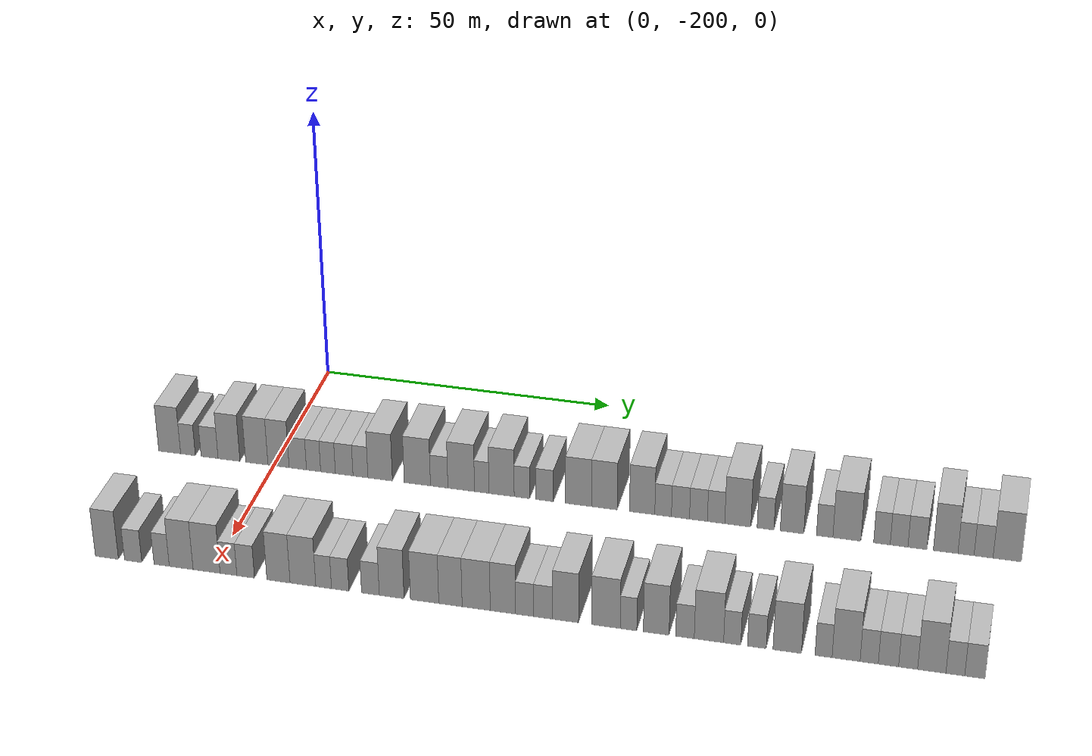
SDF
<sdf version="1.6">
 <world name="default">
  <model name="building_1">
   <static>1</static>
   <pose>25.0000 -218.0897 0 0.000000 0.000000 0.000000</pose>
   <link name="link">
    <pose>0 0 4.50 0 0 0</pose>
    <collision name="collision"><geometry><box><size>10.0000 3.8207 9.0000</size></box></geometry></collision>
    <visual name="visual">
     <cast_shadows>0</cast_shadows>
     <geometry><box><size>10.0000 3.8207 9.0000</size></box></geometry>
     <material>
      <script>
       <uri>model://HANNAS_wall/materials/scripts</uri>
       <uri>model://HANNAS_wall/materials/textures</uri>
       <name>vrc/HANNAS_wall</name>
      </script>
     </material>
    </visual>
   </link>
  </model>
  <model name="building_2">
   <static>1</static>
   <pose>25.0000 -214.8921 0 0.000000 0.000000 0.000000</pose>
   <link name="link">
    <pose>0 0 3.00 0 0 0</pose>
    <collision name="collision"><geometry><box><size>10.0000 2.5745 6.0000</size></box></geometry></collision>
    <visual name="visual">
     <cast_shadows>0</cast_shadows>
     <geometry><box><size>10.0000 2.5745 6.0000</size></box></geometry>
     <material>
      <script>
       <uri>model://HANNAS_wall/materials/scripts</uri>
       <uri>model://HANNAS_wall/materials/textures</uri>
       <name>vrc/HANNAS_wall</name>
      </script>
     </material>
    </visual>
   </link>
  </model>
  <model name="building_3">
   <static>1</static>
   <pose>25.0000 -211.1258 0 0.000000 0.000000 0.000000</pose>
   <link name="link">
    <pose>0 0 3.00 0 0 0</pose>
    <collision name="collision"><geometry><box><size>10.0000 2.9583 6.0000</size></box></geometry></collision>
    <visual name="visual">
     <cast_shadows>0</cast_shadows>
     <geometry><box><size>10.0000 2.9583 6.0000</size></box></geometry>
     <material>
      <script>
       <uri>model://HANNAS_wall/materials/scripts</uri>
       <uri>model://HANNAS_wall/materials/textures</uri>
       <name>vrc/HANNAS_wall</name>
      </script>
     </material>
    </visual>
   </link>
  </model>
  <model name="building_4">
   <static>1</static>
   <pose>25.0000 -207.7476 0 0.000000 0.000000 0.000000</pose>
   <link name="link">
    <pose>0 0 4.50 0 0 0</pose>
    <collision name="collision"><geometry><box><size>10.0000 3.7980 9.0000</size></box></geometry></collision>
    <visual name="visual">
     <cast_shadows>0</cast_shadows>
     <geometry><box><size>10.0000 3.7980 9.0000</size></box></geometry>
     <material>
      <script>
       <uri>model://HANNAS_wall/materials/scripts</uri>
       <uri>model://HANNAS_wall/materials/textures</uri>
       <name>vrc/HANNAS_wall</name>
      </script>
     </material>
    </visual>
   </link>
  </model>
  <model name="building_5">
   <static>1</static>
   <pose>25.0000 -202.9274 0 0.000000 0.000000 0.000000</pose>
   <link name="link">
    <pose>0 0 4.50 0 0 0</pose>
    <collision name="collision"><geometry><box><size>10.0000 3.8425 9.0000</size></box></geometry></collision>
    <visual name="visual">
     <cast_shadows>0</cast_shadows>
     <geometry><box><size>10.0000 3.8425 9.0000</size></box></geometry>
     <material>
      <script>
       <uri>model://HANNAS_wall/materials/scripts</uri>
       <uri>model://HANNAS_wall/materials/textures</uri>
       <name>vrc/HANNAS_wall</name>
      </script>
     </material>
    </visual>
   </link>
  </model>
  <model name="building_6">
   <static>1</static>
   <pose>25.0000 -199.1834 0 0.000000 0.000000 0.000000</pose>
   <link name="link">
    <pose>0 0 4.50 0 0 0</pose>
    <collision name="collision"><geometry><box><size>10.0000 3.6454 9.0000</size></box></geometry></collision>
    <visual name="visual">
     <cast_shadows>0</cast_shadows>
     <geometry><box><size>10.0000 3.6454 9.0000</size></box></geometry>
     <material>
      <script>
       <uri>model://HANNAS_wall/materials/scripts</uri>
       <uri>model://HANNAS_wall/materials/textures</uri>
       <name>vrc/HANNAS_wall</name>
      </script>
     </material>
    </visual>
   </link>
  </model>
  <model name="building_7">
   <static>1</static>
   <pose>25.0000 -195.8745 0 0.000000 0.000000 0.000000</pose>
   <link name="link">
    <pose>0 0 3.00 0 0 0</pose>
    <collision name="collision"><geometry><box><size>10.0000 2.9724 6.0000</size></box></geometry></collision>
    <visual name="visual">
     <cast_shadows>0</cast_shadows>
     <geometry><box><size>10.0000 2.9724 6.0000</size></box></geometry>
     <material>
      <script>
       <uri>model://HANNAS_wall/materials/scripts</uri>
       <uri>model://HANNAS_wall/materials/textures</uri>
       <name>vrc/HANNAS_wall</name>
      </script>
     </material>
    </visual>
   </link>
  </model>
  <model name="building_8">
   <static>1</static>
   <pose>25.0000 -193.1741 0 0.000000 0.000000 0.000000</pose>
   <link name="link">
    <pose>0 0 3.00 0 0 0</pose>
    <collision name="collision"><geometry><box><size>10.0000 2.4283 6.0000</size></box></geometry></collision>
    <visual name="visual">
     <cast_shadows>0</cast_shadows>
     <geometry><box><size>10.0000 2.4283 6.0000</size></box></geometry>
     <material>
      <script>
       <uri>model://HANNAS_wall/materials/scripts</uri>
       <uri>model://HANNAS_wall/materials/textures</uri>
       <name>vrc/HANNAS_wall</name>
      </script>
     </material>
    </visual>
   </link>
  </model>
  <model name="building_9">
   <static>1</static>
   <pose>25.0000 -190.6987 0 0.000000 0.000000 0.000000</pose>
   <link name="link">
    <pose>0 0 3.00 0 0 0</pose>
    <collision name="collision"><geometry><box><size>10.0000 2.5225 6.0000</size></box></geometry></collision>
    <visual name="visual">
     <cast_shadows>0</cast_shadows>
     <geometry><box><size>10.0000 2.5225 6.0000</size></box></geometry>
     <material>
      <script>
       <uri>model://HANNAS_wall/materials/scripts</uri>
       <uri>model://HANNAS_wall/materials/textures</uri>
       <name>vrc/HANNAS_wall</name>
      </script>
     </material>
    </visual>
   </link>
  </model>
  <model name="building_10">
   <static>1</static>
   <pose>25.0000 -187.9396 0 0.000000 0.000000 0.000000</pose>
   <link name="link">
    <pose>0 0 3.00 0 0 0</pose>
    <collision name="collision"><geometry><box><size>10.0000 2.9959 6.0000</size></box></geometry></collision>
    <visual name="visual">
     <cast_shadows>0</cast_shadows>
     <geometry><box><size>10.0000 2.9959 6.0000</size></box></geometry>
     <material>
      <script>
       <uri>model://HANNAS_wall/materials/scripts</uri>
       <uri>model://HANNAS_wall/materials/textures</uri>
       <name>vrc/HANNAS_wall</name>
      </script>
     </material>
    </visual>
   </link>
  </model>
  <model name="building_11">
   <static>1</static>
   <pose>25.0000 -185.1708 0 0.000000 0.000000 0.000000</pose>
   <link name="link">
    <pose>0 0 3.00 0 0 0</pose>
    <collision name="collision"><geometry><box><size>10.0000 2.5417 6.0000</size></box></geometry></collision>
    <visual name="visual">
     <cast_shadows>0</cast_shadows>
     <geometry><box><size>10.0000 2.5417 6.0000</size></box></geometry>
     <material>
      <script>
       <uri>model://HANNAS_wall/materials/scripts</uri>
       <uri>model://HANNAS_wall/materials/textures</uri>
       <name>vrc/HANNAS_wall</name>
      </script>
     </material>
    </visual>
   </link>
  </model>
  <model name="building_12">
   <static>1</static>
   <pose>25.0000 -181.8260 0 0.000000 0.000000 0.000000</pose>
   <link name="link">
    <pose>0 0 4.50 0 0 0</pose>
    <collision name="collision"><geometry><box><size>10.0000 4.1478 9.0000</size></box></geometry></collision>
    <visual name="visual">
     <cast_shadows>0</cast_shadows>
     <geometry><box><size>10.0000 4.1478 9.0000</size></box></geometry>
     <material>
      <script>
       <uri>model://HANNAS_wall/materials/scripts</uri>
       <uri>model://HANNAS_wall/materials/textures</uri>
       <name>vrc/HANNAS_wall</name>
      </script>
     </material>
    </visual>
   </link>
  </model>
  <model name="building_13">
   <static>1</static>
   <pose>25.0000 -175.5494 0 0.000000 0.000000 0.000000</pose>
   <link name="link">
    <pose>0 0 4.50 0 0 0</pose>
    <collision name="collision"><geometry><box><size>10.0000 4.4053 9.0000</size></box></geometry></collision>
    <visual name="visual">
     <cast_shadows>0</cast_shadows>
     <geometry><box><size>10.0000 4.4053 9.0000</size></box></geometry>
     <material>
      <script>
       <uri>model://HANNAS_wall/materials/scripts</uri>
       <uri>model://HANNAS_wall/materials/textures</uri>
       <name>vrc/HANNAS_wall</name>
      </script>
     </material>
    </visual>
   </link>
  </model>
  <model name="building_14">
   <static>1</static>
   <pose>25.0000 -171.8865 0 0.000000 0.000000 0.000000</pose>
   <link name="link">
    <pose>0 0 3.00 0 0 0</pose>
    <collision name="collision"><geometry><box><size>10.0000 2.9205 6.0000</size></box></geometry></collision>
    <visual name="visual">
     <cast_shadows>0</cast_shadows>
     <geometry><box><size>10.0000 2.9205 6.0000</size></box></geometry>
     <material>
      <script>
       <uri>model://HANNAS_wall/materials/scripts</uri>
       <uri>model://HANNAS_wall/materials/textures</uri>
       <name>vrc/HANNAS_wall</name>
      </script>
     </material>
    </visual>
   </link>
  </model>
  <model name="building_15">
   <static>1</static>
   <pose>25.0000 -168.1947 0 0.000000 0.000000 0.000000</pose>
   <link name="link">
    <pose>0 0 4.50 0 0 0</pose>
    <collision name="collision"><geometry><box><size>10.0000 4.4631 9.0000</size></box></geometry></collision>
    <visual name="visual">
     <cast_shadows>0</cast_shadows>
     <geometry><box><size>10.0000 4.4631 9.0000</size></box></geometry>
     <material>
      <script>
       <uri>model://HANNAS_wall/materials/scripts</uri>
       <uri>model://HANNAS_wall/materials/textures</uri>
       <name>vrc/HANNAS_wall</name>
      </script>
     </material>
    </visual>
   </link>
  </model>
  <model name="building_16">
   <static>1</static>
   <pose>25.0000 -164.7616 0 0.000000 0.000000 0.000000</pose>
   <link name="link">
    <pose>0 0 3.00 0 0 0</pose>
    <collision name="collision"><geometry><box><size>10.0000 2.4031 6.0000</size></box></geometry></collision>
    <visual name="visual">
     <cast_shadows>0</cast_shadows>
     <geometry><box><size>10.0000 2.4031 6.0000</size></box></geometry>
     <material>
      <script>
       <uri>model://HANNAS_wall/materials/scripts</uri>
       <uri>model://HANNAS_wall/materials/textures</uri>
       <name>vrc/HANNAS_wall</name>
      </script>
     </material>
    </visual>
   </link>
  </model>
  <model name="building_17">
   <static>1</static>
   <pose>25.0000 -161.4682 0 0.000000 0.000000 0.000000</pose>
   <link name="link">
    <pose>0 0 4.50 0 0 0</pose>
    <collision name="collision"><geometry><box><size>10.0000 4.1837 9.0000</size></box></geometry></collision>
    <visual name="visual">
     <cast_shadows>0</cast_shadows>
     <geometry><box><size>10.0000 4.1837 9.0000</size></box></geometry>
     <material>
      <script>
       <uri>model://HANNAS_wall/materials/scripts</uri>
       <uri>model://HANNAS_wall/materials/textures</uri>
       <name>vrc/HANNAS_wall</name>
      </script>
     </material>
    </visual>
   </link>
  </model>
  <model name="building_18">
   <static>1</static>
   <pose>25.0000 -158.0925 0 0.000000 0.000000 0.000000</pose>
   <link name="link">
    <pose>0 0 3.00 0 0 0</pose>
    <collision name="collision"><geometry><box><size>10.0000 2.5677 6.0000</size></box></geometry></collision>
    <visual name="visual">
     <cast_shadows>0</cast_shadows>
     <geometry><box><size>10.0000 2.5677 6.0000</size></box></geometry>
     <material>
      <script>
       <uri>model://HANNAS_wall/materials/scripts</uri>
       <uri>model://HANNAS_wall/materials/textures</uri>
       <name>vrc/HANNAS_wall</name>
      </script>
     </material>
    </visual>
   </link>
  </model>
  <model name="building_19">
   <static>1</static>
   <pose>25.0000 -154.3482 0 0.000000 0.000000 0.000000</pose>
   <link name="link">
    <pose>0 0 3.00 0 0 0</pose>
    <collision name="collision"><geometry><box><size>10.0000 2.9210 6.0000</size></box></geometry></collision>
    <visual name="visual">
     <cast_shadows>0</cast_shadows>
     <geometry><box><size>10.0000 2.9210 6.0000</size></box></geometry>
     <material>
      <script>
       <uri>model://HANNAS_wall/materials/scripts</uri>
       <uri>model://HANNAS_wall/materials/textures</uri>
       <name>vrc/HANNAS_wall</name>
      </script>
     </material>
    </visual>
   </link>
  </model>
  <model name="building_20">
   <static>1</static>
   <pose>25.0000 -148.7651 0 0.000000 0.000000 0.000000</pose>
   <link name="link">
    <pose>0 0 4.50 0 0 0</pose>
    <collision name="collision"><geometry><box><size>10.0000 4.2451 9.0000</size></box></geometry></collision>
    <visual name="visual">
     <cast_shadows>0</cast_shadows>
     <geometry><box><size>10.0000 4.2451 9.0000</size></box></geometry>
     <material>
      <script>
       <uri>model://HANNAS_wall/materials/scripts</uri>
       <uri>model://HANNAS_wall/materials/textures</uri>
       <name>vrc/HANNAS_wall</name>
      </script>
     </material>
    </visual>
   </link>
  </model>
  <model name="building_21">
   <static>1</static>
   <pose>25.0000 -144.5374 0 0.000000 0.000000 0.000000</pose>
   <link name="link">
    <pose>0 0 4.50 0 0 0</pose>
    <collision name="collision"><geometry><box><size>10.0000 4.2104 9.0000</size></box></geometry></collision>
    <visual name="visual">
     <cast_shadows>0</cast_shadows>
     <geometry><box><size>10.0000 4.2104 9.0000</size></box></geometry>
     <material>
      <script>
       <uri>model://HANNAS_wall/materials/scripts</uri>
       <uri>model://HANNAS_wall/materials/textures</uri>
       <name>vrc/HANNAS_wall</name>
      </script>
     </material>
    </visual>
   </link>
  </model>
  <model name="building_22">
   <static>1</static>
   <pose>25.0000 -138.3827 0 0.000000 0.000000 0.000000</pose>
   <link name="link">
    <pose>0 0 4.50 0 0 0</pose>
    <collision name="collision"><geometry><box><size>10.0000 4.0988 9.0000</size></box></geometry></collision>
    <visual name="visual">
     <cast_shadows>0</cast_shadows>
     <geometry><box><size>10.0000 4.0988 9.0000</size></box></geometry>
     <material>
      <script>
       <uri>model://HANNAS_wall/materials/scripts</uri>
       <uri>model://HANNAS_wall/materials/textures</uri>
       <name>vrc/HANNAS_wall</name>
      </script>
     </material>
    </visual>
   </link>
  </model>
  <model name="building_23">
   <static>1</static>
   <pose>25.0000 -134.9869 0 0.000000 0.000000 0.000000</pose>
   <link name="link">
    <pose>0 0 3.00 0 0 0</pose>
    <collision name="collision"><geometry><box><size>10.0000 2.6928 6.0000</size></box></geometry></collision>
    <visual name="visual">
     <cast_shadows>0</cast_shadows>
     <geometry><box><size>10.0000 2.6928 6.0000</size></box></geometry>
     <material>
      <script>
       <uri>model://HANNAS_wall/materials/scripts</uri>
       <uri>model://HANNAS_wall/materials/textures</uri>
       <name>vrc/HANNAS_wall</name>
      </script>
     </material>
    </visual>
   </link>
  </model>
  <model name="building_24">
   <static>1</static>
   <pose>25.0000 -132.1823 0 0.000000 0.000000 0.000000</pose>
   <link name="link">
    <pose>0 0 3.00 0 0 0</pose>
    <collision name="collision"><geometry><box><size>10.0000 2.9164 6.0000</size></box></geometry></collision>
    <visual name="visual">
     <cast_shadows>0</cast_shadows>
     <geometry><box><size>10.0000 2.9164 6.0000</size></box></geometry>
     <material>
      <script>
       <uri>model://HANNAS_wall/materials/scripts</uri>
       <uri>model://HANNAS_wall/materials/textures</uri>
       <name>vrc/HANNAS_wall</name>
      </script>
     </material>
    </visual>
   </link>
  </model>
  <model name="building_25">
   <static>1</static>
   <pose>25.0000 -129.2914 0 0.000000 0.000000 0.000000</pose>
   <link name="link">
    <pose>0 0 3.00 0 0 0</pose>
    <collision name="collision"><geometry><box><size>10.0000 2.8655 6.0000</size></box></geometry></collision>
    <visual name="visual">
     <cast_shadows>0</cast_shadows>
     <geometry><box><size>10.0000 2.8655 6.0000</size></box></geometry>
     <material>
      <script>
       <uri>model://HANNAS_wall/materials/scripts</uri>
       <uri>model://HANNAS_wall/materials/textures</uri>
       <name>vrc/HANNAS_wall</name>
      </script>
     </material>
    </visual>
   </link>
  </model>
  <model name="building_26">
   <static>1</static>
   <pose>25.0000 -126.4624 0 0.000000 0.000000 0.000000</pose>
   <link name="link">
    <pose>0 0 3.00 0 0 0</pose>
    <collision name="collision"><geometry><box><size>10.0000 2.7925 6.0000</size></box></geometry></collision>
    <visual name="visual">
     <cast_shadows>0</cast_shadows>
     <geometry><box><size>10.0000 2.7925 6.0000</size></box></geometry>
     <material>
      <script>
       <uri>model://HANNAS_wall/materials/scripts</uri>
       <uri>model://HANNAS_wall/materials/textures</uri>
       <name>vrc/HANNAS_wall</name>
      </script>
     </material>
    </visual>
   </link>
  </model>
  <model name="building_27">
   <static>1</static>
   <pose>25.0000 -122.9737 0 0.000000 0.000000 0.000000</pose>
   <link name="link">
    <pose>0 0 4.50 0 0 0</pose>
    <collision name="collision"><geometry><box><size>10.0000 4.1849 9.0000</size></box></geometry></collision>
    <visual name="visual">
     <cast_shadows>0</cast_shadows>
     <geometry><box><size>10.0000 4.1849 9.0000</size></box></geometry>
     <material>
      <script>
       <uri>model://HANNAS_wall/materials/scripts</uri>
       <uri>model://HANNAS_wall/materials/textures</uri>
       <name>vrc/HANNAS_wall</name>
      </script>
     </material>
    </visual>
   </link>
  </model>
  <model name="building_28">
   <static>1</static>
   <pose>25.0000 -118.5376 0 0.000000 0.000000 0.000000</pose>
   <link name="link">
    <pose>0 0 3.00 0 0 0</pose>
    <collision name="collision"><geometry><box><size>10.0000 2.6874 6.0000</size></box></geometry></collision>
    <visual name="visual">
     <cast_shadows>0</cast_shadows>
     <geometry><box><size>10.0000 2.6874 6.0000</size></box></geometry>
     <material>
      <script>
       <uri>model://HANNAS_wall/materials/scripts</uri>
       <uri>model://HANNAS_wall/materials/textures</uri>
       <name>vrc/HANNAS_wall</name>
      </script>
     </material>
    </visual>
   </link>
  </model>
  <model name="building_29">
   <static>1</static>
   <pose>25.0000 -114.3264 0 0.000000 0.000000 0.000000</pose>
   <link name="link">
    <pose>0 0 4.50 0 0 0</pose>
    <collision name="collision"><geometry><box><size>10.0000 3.7350 9.0000</size></box></geometry></collision>
    <visual name="visual">
     <cast_shadows>0</cast_shadows>
     <geometry><box><size>10.0000 3.7350 9.0000</size></box></geometry>
     <material>
      <script>
       <uri>model://HANNAS_wall/materials/scripts</uri>
       <uri>model://HANNAS_wall/materials/textures</uri>
       <name>vrc/HANNAS_wall</name>
      </script>
     </material>
    </visual>
   </link>
  </model>
  <model name="building_30">
   <static>1</static>
   <pose>25.0000 -109.1636 0 0.000000 0.000000 0.000000</pose>
   <link name="link">
    <pose>0 0 3.00 0 0 0</pose>
    <collision name="collision"><geometry><box><size>10.0000 2.5906 6.0000</size></box></geometry></collision>
    <visual name="visual">
     <cast_shadows>0</cast_shadows>
     <geometry><box><size>10.0000 2.5906 6.0000</size></box></geometry>
     <material>
      <script>
       <uri>model://HANNAS_wall/materials/scripts</uri>
       <uri>model://HANNAS_wall/materials/textures</uri>
       <name>vrc/HANNAS_wall</name>
      </script>
     </material>
    </visual>
   </link>
  </model>
  <model name="building_31">
   <static>1</static>
   <pose>25.0000 -105.6665 0 0.000000 0.000000 0.000000</pose>
   <link name="link">
    <pose>0 0 4.50 0 0 0</pose>
    <collision name="collision"><geometry><box><size>10.0000 4.4036 9.0000</size></box></geometry></collision>
    <visual name="visual">
     <cast_shadows>0</cast_shadows>
     <geometry><box><size>10.0000 4.4036 9.0000</size></box></geometry>
     <material>
      <script>
       <uri>model://HANNAS_wall/materials/scripts</uri>
       <uri>model://HANNAS_wall/materials/textures</uri>
       <name>vrc/HANNAS_wall</name>
      </script>
     </material>
    </visual>
   </link>
  </model>
  <model name="building_32">
   <static>1</static>
   <pose>25.0000 -100.1690 0 0.000000 0.000000 0.000000</pose>
   <link name="link">
    <pose>0 0 3.00 0 0 0</pose>
    <collision name="collision"><geometry><box><size>10.0000 2.5914 6.0000</size></box></geometry></collision>
    <visual name="visual">
     <cast_shadows>0</cast_shadows>
     <geometry><box><size>10.0000 2.5914 6.0000</size></box></geometry>
     <material>
      <script>
       <uri>model://HANNAS_wall/materials/scripts</uri>
       <uri>model://HANNAS_wall/materials/textures</uri>
       <name>vrc/HANNAS_wall</name>
      </script>
     </material>
    </visual>
   </link>
  </model>
  <model name="building_33">
   <static>1</static>
   <pose>25.0000 -97.4928 0 0.000000 0.000000 0.000000</pose>
   <link name="link">
    <pose>0 0 3.00 0 0 0</pose>
    <collision name="collision"><geometry><box><size>10.0000 2.7609 6.0000</size></box></geometry></collision>
    <visual name="visual">
     <cast_shadows>0</cast_shadows>
     <geometry><box><size>10.0000 2.7609 6.0000</size></box></geometry>
     <material>
      <script>
       <uri>model://HANNAS_wall/materials/scripts</uri>
       <uri>model://HANNAS_wall/materials/textures</uri>
       <name>vrc/HANNAS_wall</name>
      </script>
     </material>
    </visual>
   </link>
  </model>
  <model name="building_34">
   <static>1</static>
   <pose>25.0000 -94.6320 0 0.000000 0.000000 0.000000</pose>
   <link name="link">
    <pose>0 0 3.00 0 0 0</pose>
    <collision name="collision"><geometry><box><size>10.0000 2.9607 6.0000</size></box></geometry></collision>
    <visual name="visual">
     <cast_shadows>0</cast_shadows>
     <geometry><box><size>10.0000 2.9607 6.0000</size></box></geometry>
     <material>
      <script>
       <uri>model://HANNAS_wall/materials/scripts</uri>
       <uri>model://HANNAS_wall/materials/textures</uri>
       <name>vrc/HANNAS_wall</name>
      </script>
     </material>
    </visual>
   </link>
  </model>
  <model name="building_35">
   <static>1</static>
   <pose>25.0000 -90.2507 0 0.000000 0.000000 0.000000</pose>
   <link name="link">
    <pose>0 0 4.50 0 0 0</pose>
    <collision name="collision"><geometry><box><size>10.0000 3.8020 9.0000</size></box></geometry></collision>
    <visual name="visual">
     <cast_shadows>0</cast_shadows>
     <geometry><box><size>10.0000 3.8020 9.0000</size></box></geometry>
     <material>
      <script>
       <uri>model://HANNAS_wall/materials/scripts</uri>
       <uri>model://HANNAS_wall/materials/textures</uri>
       <name>vrc/HANNAS_wall</name>
      </script>
     </material>
    </visual>
   </link>
  </model>
  <model name="building_36">
   <static>1</static>
   <pose>25.0000 -87.1026 0 0.000000 0.000000 0.000000</pose>
   <link name="link">
    <pose>0 0 3.00 0 0 0</pose>
    <collision name="collision"><geometry><box><size>10.0000 2.4942 6.0000</size></box></geometry></collision>
    <visual name="visual">
     <cast_shadows>0</cast_shadows>
     <geometry><box><size>10.0000 2.4942 6.0000</size></box></geometry>
     <material>
      <script>
       <uri>model://HANNAS_wall/materials/scripts</uri>
       <uri>model://HANNAS_wall/materials/textures</uri>
       <name>vrc/HANNAS_wall</name>
      </script>
     </material>
    </visual>
   </link>
  </model>
  <model name="building_37">
   <static>1</static>
   <pose>25.0000 -84.3952 0 0.000000 0.000000 0.000000</pose>
   <link name="link">
    <pose>0 0 3.00 0 0 0</pose>
    <collision name="collision"><geometry><box><size>10.0000 2.9205 6.0000</size></box></geometry></collision>
    <visual name="visual">
     <cast_shadows>0</cast_shadows>
     <geometry><box><size>10.0000 2.9205 6.0000</size></box></geometry>
     <material>
      <script>
       <uri>model://HANNAS_wall/materials/scripts</uri>
       <uri>model://HANNAS_wall/materials/textures</uri>
       <name>vrc/HANNAS_wall</name>
      </script>
     </material>
    </visual>
   </link>
  </model>
  <model name="building_38">
   <static>1</static>
   <pose>25.0000 -80.7593 0 0.000000 0.000000 0.000000</pose>
   <link name="link">
    <pose>0 0 4.50 0 0 0</pose>
    <collision name="collision"><geometry><box><size>10.0000 4.3513 9.0000</size></box></geometry></collision>
    <visual name="visual">
     <cast_shadows>0</cast_shadows>
     <geometry><box><size>10.0000 4.3513 9.0000</size></box></geometry>
     <material>
      <script>
       <uri>model://HANNAS_wall/materials/scripts</uri>
       <uri>model://HANNAS_wall/materials/textures</uri>
       <name>vrc/HANNAS_wall</name>
      </script>
     </material>
    </visual>
   </link>
  </model>
  <model name="building_119">
   <static>1</static>
   <pose>55.0000 -217.0996 0 0.000000 0.000000 0.000000</pose>
   <link name="link">
    <pose>0 0 4.50 0 0 0</pose>
    <collision name="collision"><geometry><box><size>10.0000 3.8008 9.0000</size></box></geometry></collision>
    <visual name="visual">
     <cast_shadows>0</cast_shadows>
     <geometry><box><size>10.0000 3.8008 9.0000</size></box></geometry>
     <material>
      <script>
       <uri>model://HANNAS_wall/materials/scripts</uri>
       <uri>model://HANNAS_wall/materials/textures</uri>
       <name>vrc/HANNAS_wall</name>
      </script>
     </material>
    </visual>
   </link>
  </model>
  <model name="building_120">
   <static>1</static>
   <pose>55.0000 -212.7796 0 0.000000 0.000000 0.000000</pose>
   <link name="link">
    <pose>0 0 3.00 0 0 0</pose>
    <collision name="collision"><geometry><box><size>10.0000 2.8391 6.0000</size></box></geometry></collision>
    <visual name="visual">
     <cast_shadows>0</cast_shadows>
     <geometry><box><size>10.0000 2.8391 6.0000</size></box></geometry>
     <material>
      <script>
       <uri>model://HANNAS_wall/materials/scripts</uri>
       <uri>model://HANNAS_wall/materials/textures</uri>
       <name>vrc/HANNAS_wall</name>
      </script>
     </material>
    </visual>
   </link>
  </model>
  <model name="building_121">
   <static>1</static>
   <pose>55.0000 -208.1156 0 0.000000 0.000000 0.000000</pose>
   <link name="link">
    <pose>0 0 3.00 0 0 0</pose>
    <collision name="collision"><geometry><box><size>10.0000 2.4890 6.0000</size></box></geometry></collision>
    <visual name="visual">
     <cast_shadows>0</cast_shadows>
     <geometry><box><size>10.0000 2.4890 6.0000</size></box></geometry>
     <material>
      <script>
       <uri>model://HANNAS_wall/materials/scripts</uri>
       <uri>model://HANNAS_wall/materials/textures</uri>
       <name>vrc/HANNAS_wall</name>
      </script>
     </material>
    </visual>
   </link>
  </model>
  <model name="building_122">
   <static>1</static>
   <pose>55.0000 -204.9295 0 0.000000 0.000000 0.000000</pose>
   <link name="link">
    <pose>0 0 4.50 0 0 0</pose>
    <collision name="collision"><geometry><box><size>10.0000 3.8830 9.0000</size></box></geometry></collision>
    <visual name="visual">
     <cast_shadows>0</cast_shadows>
     <geometry><box><size>10.0000 3.8830 9.0000</size></box></geometry>
     <material>
      <script>
       <uri>model://HANNAS_wall/materials/scripts</uri>
       <uri>model://HANNAS_wall/materials/textures</uri>
       <name>vrc/HANNAS_wall</name>
      </script>
     </material>
    </visual>
   </link>
  </model>
  <model name="building_123">
   <static>1</static>
   <pose>55.0000 -200.7972 0 0.000000 0.000000 0.000000</pose>
   <link name="link">
    <pose>0 0 4.50 0 0 0</pose>
    <collision name="collision"><geometry><box><size>10.0000 4.3817 9.0000</size></box></geometry></collision>
    <visual name="visual">
     <cast_shadows>0</cast_shadows>
     <geometry><box><size>10.0000 4.3817 9.0000</size></box></geometry>
     <material>
      <script>
       <uri>model://HANNAS_wall/materials/scripts</uri>
       <uri>model://HANNAS_wall/materials/textures</uri>
       <name>vrc/HANNAS_wall</name>
      </script>
     </material>
    </visual>
   </link>
  </model>
  <model name="building_124">
   <static>1</static>
   <pose>55.0000 -197.2462 0 0.000000 0.000000 0.000000</pose>
   <link name="link">
    <pose>0 0 3.00 0 0 0</pose>
    <collision name="collision"><geometry><box><size>10.0000 2.7203 6.0000</size></box></geometry></collision>
    <visual name="visual">
     <cast_shadows>0</cast_shadows>
     <geometry><box><size>10.0000 2.7203 6.0000</size></box></geometry>
     <material>
      <script>
       <uri>model://HANNAS_wall/materials/scripts</uri>
       <uri>model://HANNAS_wall/materials/textures</uri>
       <name>vrc/HANNAS_wall</name>
      </script>
     </material>
    </visual>
   </link>
  </model>
  <model name="building_125">
   <static>1</static>
   <pose>55.0000 -194.4665 0 0.000000 0.000000 0.000000</pose>
   <link name="link">
    <pose>0 0 3.00 0 0 0</pose>
    <collision name="collision"><geometry><box><size>10.0000 2.8392 6.0000</size></box></geometry></collision>
    <visual name="visual">
     <cast_shadows>0</cast_shadows>
     <geometry><box><size>10.0000 2.8392 6.0000</size></box></geometry>
     <material>
      <script>
       <uri>model://HANNAS_wall/materials/scripts</uri>
       <uri>model://HANNAS_wall/materials/textures</uri>
       <name>vrc/HANNAS_wall</name>
      </script>
     </material>
    </visual>
   </link>
  </model>
  <model name="building_126">
   <static>1</static>
   <pose>55.0000 -189.1871 0 0.000000 0.000000 0.000000</pose>
   <link name="link">
    <pose>0 0 4.50 0 0 0</pose>
    <collision name="collision"><geometry><box><size>10.0000 3.7196 9.0000</size></box></geometry></collision>
    <visual name="visual">
     <cast_shadows>0</cast_shadows>
     <geometry><box><size>10.0000 3.7196 9.0000</size></box></geometry>
     <material>
      <script>
       <uri>model://HANNAS_wall/materials/scripts</uri>
       <uri>model://HANNAS_wall/materials/textures</uri>
       <name>vrc/HANNAS_wall</name>
      </script>
     </material>
    </visual>
   </link>
  </model>
  <model name="building_127">
   <static>1</static>
   <pose>55.0000 -185.2748 0 0.000000 0.000000 0.000000</pose>
   <link name="link">
    <pose>0 0 4.50 0 0 0</pose>
    <collision name="collision"><geometry><box><size>10.0000 4.1050 9.0000</size></box></geometry></collision>
    <visual name="visual">
     <cast_shadows>0</cast_shadows>
     <geometry><box><size>10.0000 4.1050 9.0000</size></box></geometry>
     <material>
      <script>
       <uri>model://HANNAS_wall/materials/scripts</uri>
       <uri>model://HANNAS_wall/materials/textures</uri>
       <name>vrc/HANNAS_wall</name>
      </script>
     </material>
    </visual>
   </link>
  </model>
  <model name="building_128">
   <static>1</static>
   <pose>55.0000 -181.9701 0 0.000000 0.000000 0.000000</pose>
   <link name="link">
    <pose>0 0 3.00 0 0 0</pose>
    <collision name="collision"><geometry><box><size>10.0000 2.5044 6.0000</size></box></geometry></collision>
    <visual name="visual">
     <cast_shadows>0</cast_shadows>
     <geometry><box><size>10.0000 2.5044 6.0000</size></box></geometry>
     <material>
      <script>
       <uri>model://HANNAS_wall/materials/scripts</uri>
       <uri>model://HANNAS_wall/materials/textures</uri>
       <name>vrc/HANNAS_wall</name>
      </script>
     </material>
    </visual>
   </link>
  </model>
  <model name="building_129">
   <static>1</static>
   <pose>55.0000 -179.3339 0 0.000000 0.000000 0.000000</pose>
   <link name="link">
    <pose>0 0 3.00 0 0 0</pose>
    <collision name="collision"><geometry><box><size>10.0000 2.7680 6.0000</size></box></geometry></collision>
    <visual name="visual">
     <cast_shadows>0</cast_shadows>
     <geometry><box><size>10.0000 2.7680 6.0000</size></box></geometry>
     <material>
      <script>
       <uri>model://HANNAS_wall/materials/scripts</uri>
       <uri>model://HANNAS_wall/materials/textures</uri>
       <name>vrc/HANNAS_wall</name>
      </script>
     </material>
    </visual>
   </link>
  </model>
  <model name="building_130">
   <static>1</static>
   <pose>55.0000 -174.5457 0 0.000000 0.000000 0.000000</pose>
   <link name="link">
    <pose>0 0 3.00 0 0 0</pose>
    <collision name="collision"><geometry><box><size>10.0000 2.8084 6.0000</size></box></geometry></collision>
    <visual name="visual">
     <cast_shadows>0</cast_shadows>
     <geometry><box><size>10.0000 2.8084 6.0000</size></box></geometry>
     <material>
      <script>
       <uri>model://HANNAS_wall/materials/scripts</uri>
       <uri>model://HANNAS_wall/materials/textures</uri>
       <name>vrc/HANNAS_wall</name>
      </script>
     </material>
    </visual>
   </link>
  </model>
  <model name="building_131">
   <static>1</static>
   <pose>55.0000 -171.1896 0 0.000000 0.000000 0.000000</pose>
   <link name="link">
    <pose>0 0 4.50 0 0 0</pose>
    <collision name="collision"><geometry><box><size>10.0000 3.9040 9.0000</size></box></geometry></collision>
    <visual name="visual">
     <cast_shadows>0</cast_shadows>
     <geometry><box><size>10.0000 3.9040 9.0000</size></box></geometry>
     <material>
      <script>
       <uri>model://HANNAS_wall/materials/scripts</uri>
       <uri>model://HANNAS_wall/materials/textures</uri>
       <name>vrc/HANNAS_wall</name>
      </script>
     </material>
    </visual>
   </link>
  </model>
  <model name="building_132">
   <static>1</static>
   <pose>55.0000 -166.0192 0 0.000000 0.000000 0.000000</pose>
   <link name="link">
    <pose>0 0 4.50 0 0 0</pose>
    <collision name="collision"><geometry><box><size>10.0000 4.4368 9.0000</size></box></geometry></collision>
    <visual name="visual">
     <cast_shadows>0</cast_shadows>
     <geometry><box><size>10.0000 4.4368 9.0000</size></box></geometry>
     <material>
      <script>
       <uri>model://HANNAS_wall/materials/scripts</uri>
       <uri>model://HANNAS_wall/materials/textures</uri>
       <name>vrc/HANNAS_wall</name>
      </script>
     </material>
    </visual>
   </link>
  </model>
  <model name="building_133">
   <static>1</static>
   <pose>55.0000 -161.9777 0 0.000000 0.000000 0.000000</pose>
   <link name="link">
    <pose>0 0 4.50 0 0 0</pose>
    <collision name="collision"><geometry><box><size>10.0000 3.6463 9.0000</size></box></geometry></collision>
    <visual name="visual">
     <cast_shadows>0</cast_shadows>
     <geometry><box><size>10.0000 3.6463 9.0000</size></box></geometry>
     <material>
      <script>
       <uri>model://HANNAS_wall/materials/scripts</uri>
       <uri>model://HANNAS_wall/materials/textures</uri>
       <name>vrc/HANNAS_wall</name>
      </script>
     </material>
    </visual>
   </link>
  </model>
  <model name="building_134">
   <static>1</static>
   <pose>55.0000 -157.9676 0 0.000000 0.000000 0.000000</pose>
   <link name="link">
    <pose>0 0 4.50 0 0 0</pose>
    <collision name="collision"><geometry><box><size>10.0000 4.3739 9.0000</size></box></geometry></collision>
    <visual name="visual">
     <cast_shadows>0</cast_shadows>
     <geometry><box><size>10.0000 4.3739 9.0000</size></box></geometry>
     <material>
      <script>
       <uri>model://HANNAS_wall/materials/scripts</uri>
       <uri>model://HANNAS_wall/materials/textures</uri>
       <name>vrc/HANNAS_wall</name>
      </script>
     </material>
    </visual>
   </link>
  </model>
  <model name="building_135">
   <static>1</static>
   <pose>55.0000 -153.8254 0 0.000000 0.000000 0.000000</pose>
   <link name="link">
    <pose>0 0 4.50 0 0 0</pose>
    <collision name="collision"><geometry><box><size>10.0000 3.9104 9.0000</size></box></geometry></collision>
    <visual name="visual">
     <cast_shadows>0</cast_shadows>
     <geometry><box><size>10.0000 3.9104 9.0000</size></box></geometry>
     <material>
      <script>
       <uri>model://HANNAS_wall/materials/scripts</uri>
       <uri>model://HANNAS_wall/materials/textures</uri>
       <name>vrc/HANNAS_wall</name>
      </script>
     </material>
    </visual>
   </link>
  </model>
  <model name="building_136">
   <static>1</static>
   <pose>55.0000 -150.4816 0 0.000000 0.000000 0.000000</pose>
   <link name="link">
    <pose>0 0 3.00 0 0 0</pose>
    <collision name="collision"><geometry><box><size>10.0000 2.7772 6.0000</size></box></geometry></collision>
    <visual name="visual">
     <cast_shadows>0</cast_shadows>
     <geometry><box><size>10.0000 2.7772 6.0000</size></box></geometry>
     <material>
      <script>
       <uri>model://HANNAS_wall/materials/scripts</uri>
       <uri>model://HANNAS_wall/materials/textures</uri>
       <name>vrc/HANNAS_wall</name>
      </script>
     </material>
    </visual>
   </link>
  </model>
  <model name="building_137">
   <static>1</static>
   <pose>55.0000 -147.6261 0 0.000000 0.000000 0.000000</pose>
   <link name="link">
    <pose>0 0 3.00 0 0 0</pose>
    <collision name="collision"><geometry><box><size>10.0000 2.9338 6.0000</size></box></geometry></collision>
    <visual name="visual">
     <cast_shadows>0</cast_shadows>
     <geometry><box><size>10.0000 2.9338 6.0000</size></box></geometry>
     <material>
      <script>
       <uri>model://HANNAS_wall/materials/scripts</uri>
       <uri>model://HANNAS_wall/materials/textures</uri>
       <name>vrc/HANNAS_wall</name>
      </script>
     </material>
    </visual>
   </link>
  </model>
  <model name="building_138">
   <static>1</static>
   <pose>55.0000 -144.1766 0 0.000000 0.000000 0.000000</pose>
   <link name="link">
    <pose>0 0 4.50 0 0 0</pose>
    <collision name="collision"><geometry><box><size>10.0000 3.9651 9.0000</size></box></geometry></collision>
    <visual name="visual">
     <cast_shadows>0</cast_shadows>
     <geometry><box><size>10.0000 3.9651 9.0000</size></box></geometry>
     <material>
      <script>
       <uri>model://HANNAS_wall/materials/scripts</uri>
       <uri>model://HANNAS_wall/materials/textures</uri>
       <name>vrc/HANNAS_wall</name>
      </script>
     </material>
    </visual>
   </link>
  </model>
  <model name="building_139">
   <static>1</static>
   <pose>55.0000 -138.0146 0 0.000000 0.000000 0.000000</pose>
   <link name="link">
    <pose>0 0 4.50 0 0 0</pose>
    <collision name="collision"><geometry><box><size>10.0000 4.3588 9.0000</size></box></geometry></collision>
    <visual name="visual">
     <cast_shadows>0</cast_shadows>
     <geometry><box><size>10.0000 4.3588 9.0000</size></box></geometry>
     <material>
      <script>
       <uri>model://HANNAS_wall/materials/scripts</uri>
       <uri>model://HANNAS_wall/materials/textures</uri>
       <name>vrc/HANNAS_wall</name>
      </script>
     </material>
    </visual>
   </link>
  </model>
  <model name="building_140">
   <static>1</static>
   <pose>55.0000 -134.5801 0 0.000000 0.000000 0.000000</pose>
   <link name="link">
    <pose>0 0 3.00 0 0 0</pose>
    <collision name="collision"><geometry><box><size>10.0000 2.5104 6.0000</size></box></geometry></collision>
    <visual name="visual">
     <cast_shadows>0</cast_shadows>
     <geometry><box><size>10.0000 2.5104 6.0000</size></box></geometry>
     <material>
      <script>
       <uri>model://HANNAS_wall/materials/scripts</uri>
       <uri>model://HANNAS_wall/materials/textures</uri>
       <name>vrc/HANNAS_wall</name>
      </script>
     </material>
    </visual>
   </link>
  </model>
  <model name="building_141">
   <static>1</static>
   <pose>55.0000 -130.3866 0 0.000000 0.000000 0.000000</pose>
   <link name="link">
    <pose>0 0 4.50 0 0 0</pose>
    <collision name="collision"><geometry><box><size>10.0000 3.8766 9.0000</size></box></geometry></collision>
    <visual name="visual">
     <cast_shadows>0</cast_shadows>
     <geometry><box><size>10.0000 3.8766 9.0000</size></box></geometry>
     <material>
      <script>
       <uri>model://HANNAS_wall/materials/scripts</uri>
       <uri>model://HANNAS_wall/materials/textures</uri>
       <name>vrc/HANNAS_wall</name>
      </script>
     </material>
    </visual>
   </link>
  </model>
  <model name="building_142">
   <static>1</static>
   <pose>55.0000 -126.0562 0 0.000000 0.000000 0.000000</pose>
   <link name="link">
    <pose>0 0 3.00 0 0 0</pose>
    <collision name="collision"><geometry><box><size>10.0000 2.7843 6.0000</size></box></geometry></collision>
    <visual name="visual">
     <cast_shadows>0</cast_shadows>
     <geometry><box><size>10.0000 2.7843 6.0000</size></box></geometry>
     <material>
      <script>
       <uri>model://HANNAS_wall/materials/scripts</uri>
       <uri>model://HANNAS_wall/materials/textures</uri>
       <name>vrc/HANNAS_wall</name>
      </script>
     </material>
    </visual>
   </link>
  </model>
  <model name="building_143">
   <static>1</static>
   <pose>55.0000 -122.4619 0 0.000000 0.000000 0.000000</pose>
   <link name="link">
    <pose>0 0 4.50 0 0 0</pose>
    <collision name="collision"><geometry><box><size>10.0000 4.4042 9.0000</size></box></geometry></collision>
    <visual name="visual">
     <cast_shadows>0</cast_shadows>
     <geometry><box><size>10.0000 4.4042 9.0000</size></box></geometry>
     <material>
      <script>
       <uri>model://HANNAS_wall/materials/scripts</uri>
       <uri>model://HANNAS_wall/materials/textures</uri>
       <name>vrc/HANNAS_wall</name>
      </script>
     </material>
    </visual>
   </link>
  </model>
  <model name="building_144">
   <static>1</static>
   <pose>55.0000 -118.9770 0 0.000000 0.000000 0.000000</pose>
   <link name="link">
    <pose>0 0 3.00 0 0 0</pose>
    <collision name="collision"><geometry><box><size>10.0000 2.5658 6.0000</size></box></geometry></collision>
    <visual name="visual">
     <cast_shadows>0</cast_shadows>
     <geometry><box><size>10.0000 2.5658 6.0000</size></box></geometry>
     <material>
      <script>
       <uri>model://HANNAS_wall/materials/scripts</uri>
       <uri>model://HANNAS_wall/materials/textures</uri>
       <name>vrc/HANNAS_wall</name>
      </script>
     </material>
    </visual>
   </link>
  </model>
  <model name="building_145">
   <static>1</static>
   <pose>55.0000 -115.3022 0 0.000000 0.000000 0.000000</pose>
   <link name="link">
    <pose>0 0 3.00 0 0 0</pose>
    <collision name="collision"><geometry><box><size>10.0000 2.7837 6.0000</size></box></geometry></collision>
    <visual name="visual">
     <cast_shadows>0</cast_shadows>
     <geometry><box><size>10.0000 2.7837 6.0000</size></box></geometry>
     <material>
      <script>
       <uri>model://HANNAS_wall/materials/scripts</uri>
       <uri>model://HANNAS_wall/materials/textures</uri>
       <name>vrc/HANNAS_wall</name>
      </script>
     </material>
    </visual>
   </link>
  </model>
  <model name="building_146">
   <static>1</static>
   <pose>55.0000 -110.8034 0 0.000000 0.000000 0.000000</pose>
   <link name="link">
    <pose>0 0 4.50 0 0 0</pose>
    <collision name="collision"><geometry><box><size>10.0000 4.2138 9.0000</size></box></geometry></collision>
    <visual name="visual">
     <cast_shadows>0</cast_shadows>
     <geometry><box><size>10.0000 4.2138 9.0000</size></box></geometry>
     <material>
      <script>
       <uri>model://HANNAS_wall/materials/scripts</uri>
       <uri>model://HANNAS_wall/materials/textures</uri>
       <name>vrc/HANNAS_wall</name>
      </script>
     </material>
    </visual>
   </link>
  </model>
  <model name="building_147">
   <static>1</static>
   <pose>55.0000 -105.4425 0 0.000000 0.000000 0.000000</pose>
   <link name="link">
    <pose>0 0 3.00 0 0 0</pose>
    <collision name="collision"><geometry><box><size>10.0000 2.5081 6.0000</size></box></geometry></collision>
    <visual name="visual">
     <cast_shadows>0</cast_shadows>
     <geometry><box><size>10.0000 2.5081 6.0000</size></box></geometry>
     <material>
      <script>
       <uri>model://HANNAS_wall/materials/scripts</uri>
       <uri>model://HANNAS_wall/materials/textures</uri>
       <name>vrc/HANNAS_wall</name>
      </script>
     </material>
    </visual>
   </link>
  </model>
  <model name="building_148">
   <static>1</static>
   <pose>55.0000 -102.1373 0 0.000000 0.000000 0.000000</pose>
   <link name="link">
    <pose>0 0 4.50 0 0 0</pose>
    <collision name="collision"><geometry><box><size>10.0000 4.1022 9.0000</size></box></geometry></collision>
    <visual name="visual">
     <cast_shadows>0</cast_shadows>
     <geometry><box><size>10.0000 4.1022 9.0000</size></box></geometry>
     <material>
      <script>
       <uri>model://HANNAS_wall/materials/scripts</uri>
       <uri>model://HANNAS_wall/materials/textures</uri>
       <name>vrc/HANNAS_wall</name>
      </script>
     </material>
    </visual>
   </link>
  </model>
  <model name="building_149">
   <static>1</static>
   <pose>55.0000 -98.7589 0 0.000000 0.000000 0.000000</pose>
   <link name="link">
    <pose>0 0 3.00 0 0 0</pose>
    <collision name="collision"><geometry><box><size>10.0000 2.6547 6.0000</size></box></geometry></collision>
    <visual name="visual">
     <cast_shadows>0</cast_shadows>
     <geometry><box><size>10.0000 2.6547 6.0000</size></box></geometry>
     <material>
      <script>
       <uri>model://HANNAS_wall/materials/scripts</uri>
       <uri>model://HANNAS_wall/materials/textures</uri>
       <name>vrc/HANNAS_wall</name>
      </script>
     </material>
    </visual>
   </link>
  </model>
  <model name="building_150">
   <static>1</static>
   <pose>55.0000 -95.9509 0 0.000000 0.000000 0.000000</pose>
   <link name="link">
    <pose>0 0 3.00 0 0 0</pose>
    <collision name="collision"><geometry><box><size>10.0000 2.9614 6.0000</size></box></geometry></collision>
    <visual name="visual">
     <cast_shadows>0</cast_shadows>
     <geometry><box><size>10.0000 2.9614 6.0000</size></box></geometry>
     <material>
      <script>
       <uri>model://HANNAS_wall/materials/scripts</uri>
       <uri>model://HANNAS_wall/materials/textures</uri>
       <name>vrc/HANNAS_wall</name>
      </script>
     </material>
    </visual>
   </link>
  </model>
  <model name="building_151">
   <static>1</static>
   <pose>55.0000 -93.0887 0 0.000000 0.000000 0.000000</pose>
   <link name="link">
    <pose>0 0 3.00 0 0 0</pose>
    <collision name="collision"><geometry><box><size>10.0000 2.7629 6.0000</size></box></geometry></collision>
    <visual name="visual">
     <cast_shadows>0</cast_shadows>
     <geometry><box><size>10.0000 2.7629 6.0000</size></box></geometry>
     <material>
      <script>
       <uri>model://HANNAS_wall/materials/scripts</uri>
       <uri>model://HANNAS_wall/materials/textures</uri>
       <name>vrc/HANNAS_wall</name>
      </script>
     </material>
    </visual>
   </link>
  </model>
  <model name="building_152">
   <static>1</static>
   <pose>55.0000 -89.6594 0 0.000000 0.000000 0.000000</pose>
   <link name="link">
    <pose>0 0 4.50 0 0 0</pose>
    <collision name="collision"><geometry><box><size>10.0000 4.0958 9.0000</size></box></geometry></collision>
    <visual name="visual">
     <cast_shadows>0</cast_shadows>
     <geometry><box><size>10.0000 4.0958 9.0000</size></box></geometry>
     <material>
      <script>
       <uri>model://HANNAS_wall/materials/scripts</uri>
       <uri>model://HANNAS_wall/materials/textures</uri>
       <name>vrc/HANNAS_wall</name>
      </script>
     </material>
    </visual>
   </link>
  </model>
  <model name="building_153">
   <static>1</static>
   <pose>55.0000 -86.2539 0 0.000000 0.000000 0.000000</pose>
   <link name="link">
    <pose>0 0 3.00 0 0 0</pose>
    <collision name="collision"><geometry><box><size>10.0000 2.7152 6.0000</size></box></geometry></collision>
    <visual name="visual">
     <cast_shadows>0</cast_shadows>
     <geometry><box><size>10.0000 2.7152 6.0000</size></box></geometry>
     <material>
      <script>
       <uri>model://HANNAS_wall/materials/scripts</uri>
       <uri>model://HANNAS_wall/materials/textures</uri>
       <name>vrc/HANNAS_wall</name>
      </script>
     </material>
    </visual>
   </link>
  </model>
  <model name="building_154">
   <static>1</static>
   <pose>55.0000 -83.4365 0 0.000000 0.000000 0.000000</pose>
   <link name="link">
    <pose>0 0 3.00 0 0 0</pose>
    <collision name="collision"><geometry><box><size>10.0000 2.9196 6.0000</size></box></geometry></collision>
    <visual name="visual">
     <cast_shadows>0</cast_shadows>
     <geometry><box><size>10.0000 2.9196 6.0000</size></box></geometry>
     <material>
      <script>
       <uri>model://HANNAS_wall/materials/scripts</uri>
       <uri>model://HANNAS_wall/materials/textures</uri>
       <name>vrc/HANNAS_wall</name>
      </script>
     </material>
    </visual>
   </link>
  </model>
 </world>
</sdf>
